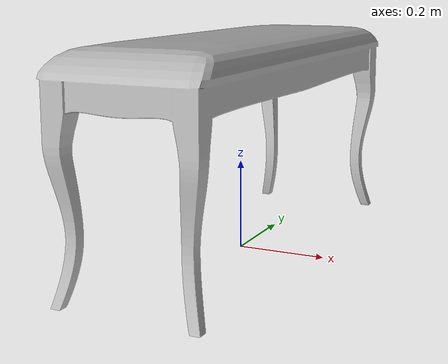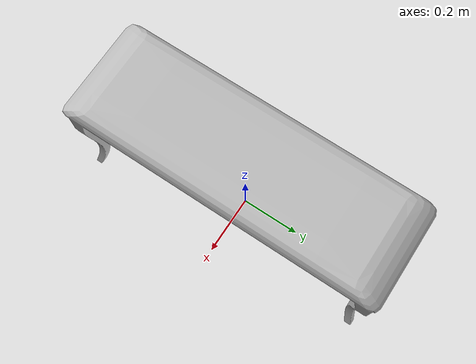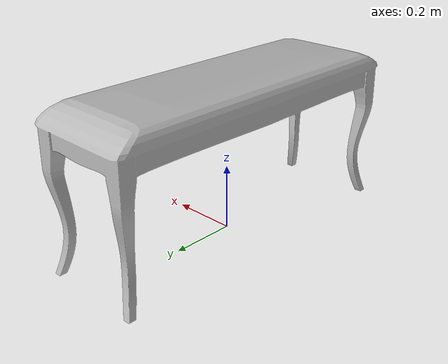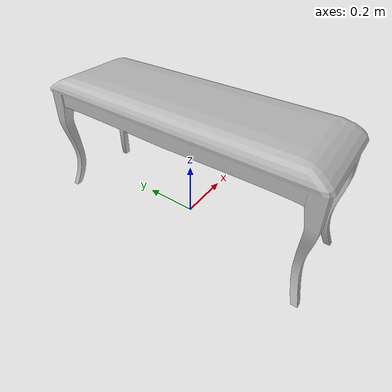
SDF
<?xml version='1.0'?>
<sdf version='1.4'>
  <model name='478'>
    <pose>0 0 0 0 0 0</pose>
    <static>true</static>
    <link name='link'>
      <collision name='collision'>
        <pose>0 0 0 0 0 0</pose>
        <geometry>
          <box>
            <size>0.34 1.03 2</size>
          </box>
        </geometry>
      </collision>
      <visual name='visual'>
        <pose>0 0 0 0 0 0</pose>
        <geometry>
          <mesh><uri>model://478/478.dae</uri></mesh>
        </geometry>
      </visual>
    </link>
  </model>
</sdf>
